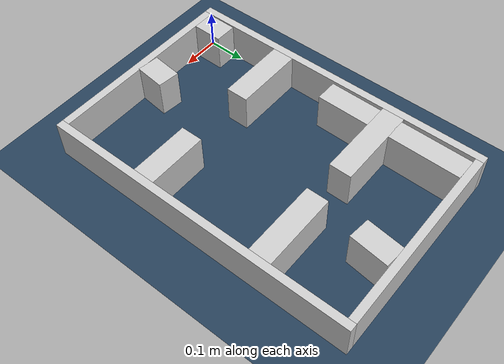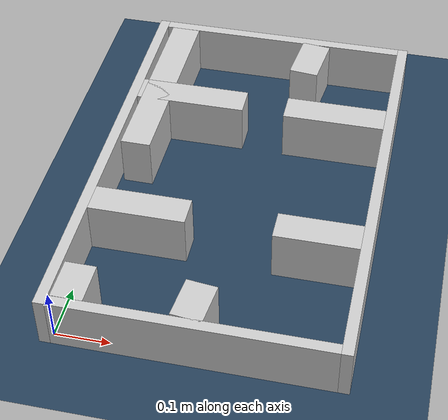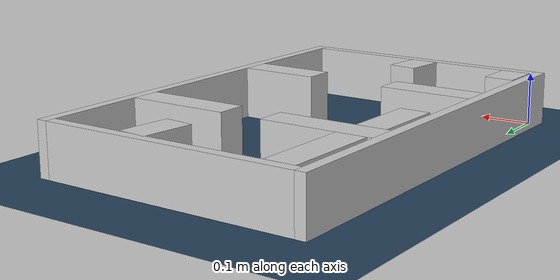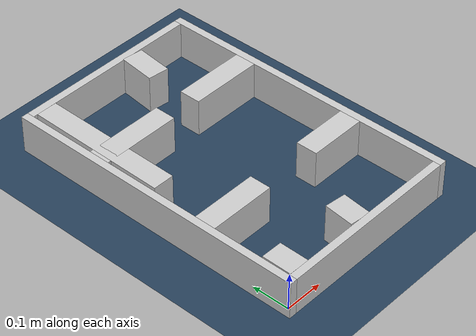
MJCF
<?xml version="1.0" ?>
<mujoco model="generated_real_template">
  <compiler angle="degree"/>
  <option timestep="0.002" integrator="implicitfast" iterations="100" cone="elliptic"/>
  <default>
    <geom density="1"/>
  </default>
  <asset>
    <texture builtin="gradient" height="3072" rgb1="0.3 0.5 0.7" rgb2="0 0 0" type="skybox" width="512"/>
    <texture builtin="checker" height="300" mark="edge" markrgb="0.8 0.8 0.8" name="groundplane" rgb1="0.2 0.3 0.4" rgb2="0.1 0.2 0.3" type="2d" width="300"/>
    <material name="groundplane" reflectance="0.2" texrepeat="5 5" texture="groundplane" texuniform="true"/>
  </asset>
  <worldbody>
    <light dir="0 0 -1" directional="true" pos="0 0 1.5"/>
    <geom name="floor" type="plane" condim="4" friction="0.5 0.005 0.001" material="groundplane" size="0 0 0.05"/>
    <body name="walls">
      <geom name="wall_boundary_left" type="box" condim="4" friction="1.0 0.005 0.0001" rgba="0.8 0.8 0.8 1" pos="-0.010000 0.387500 0.050000" euler="0 0 0.000000" size="0.010000 0.407500 0.050000"/>
      <geom name="wall_boundary_right" type="box" condim="4" friction="1.0 0.005 0.0001" rgba="0.8 0.8 0.8 1" pos="0.500000 0.387500 0.050000" euler="0 0 0.000000" size="0.010000 0.407500 0.050000"/>
      <geom name="wall_boundary_bottom" type="box" condim="4" friction="1.0 0.005 0.0001" rgba="0.8 0.8 0.8 1" pos="0.245000 -0.010000 0.050000" euler="0 0 0.000000" size="0.245000 0.010000 0.050000"/>
      <geom name="wall_boundary_top" type="box" condim="4" friction="1.0 0.005 0.0001" rgba="0.8 0.8 0.8 1" pos="0.245000 0.785000 0.050000" euler="0 0 0.000000" size="0.245000 0.010000 0.050000"/>
      <geom name="wall_inner_1_1" type="box" condim="4" friction="1.0 0.005 0.0001" rgba="0.8 0.8 0.8 1" pos="0.238355 0.039379 0.050000" euler="0 0 83.557589" size="0.039629 0.028500 0.050000"/>
      <geom name="wall_inner_1_2" type="box" condim="4" friction="1.0 0.005 0.0001" rgba="0.8 0.8 0.8 1" pos="0.315855 0.725722 0.050000" euler="0 0 83.557589" size="0.049591 0.028500 0.050000"/>
      <geom name="wall_inner_2_1" type="box" condim="4" friction="1.0 0.005 0.0001" rgba="0.8 0.8 0.8 1" pos="0.089462 0.238698 0.050000" euler="0 0 0.000000" size="0.089462 0.028500 0.050000"/>
      <geom name="wall_inner_2_2" type="box" condim="4" friction="1.0 0.005 0.0001" rgba="0.8 0.8 0.8 1" pos="0.412647 0.238698 0.050000" euler="0 0 0.000000" size="0.077353 0.028500 0.050000"/>
      <geom name="wall_inner_3_1" type="box" condim="4" friction="1.0 0.005 0.0001" rgba="0.8 0.8 0.8 1" pos="0.031646 0.039017 0.050000" euler="0 0 89.344864" size="0.039020 0.028500 0.050000"/>
      <geom name="wall_inner_3_2" type="box" condim="4" friction="1.0 0.005 0.0001" rgba="0.8 0.8 0.8 1" pos="0.037892 0.585292 0.050000" euler="0 0 89.344864" size="0.189720 0.028500 0.050000"/>
      <geom name="wall_inner_4_1" type="box" condim="4" friction="1.0 0.005 0.0001" rgba="0.8 0.8 0.8 1" pos="0.106769 0.561510 0.050000" euler="0 0 0.000000" size="0.106769 0.028500 0.050000"/>
      <geom name="wall_inner_4_2" type="box" condim="4" friction="1.0 0.005 0.0001" rgba="0.8 0.8 0.8 1" pos="0.392430 0.561510 0.050000" euler="0 0 0.000000" size="0.097570 0.028500 0.050000"/>
    </body>
  </worldbody>
</mujoco>
